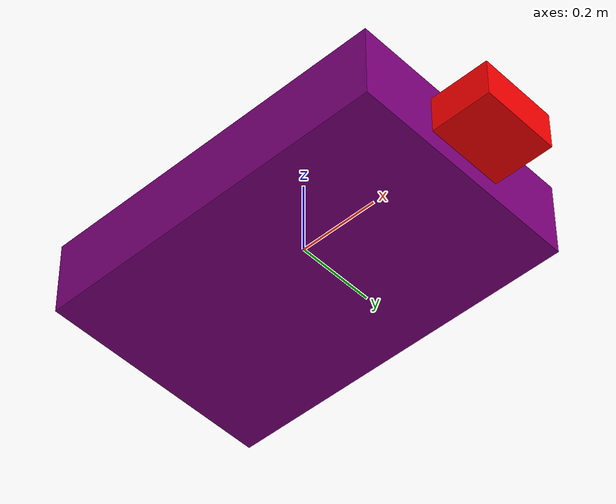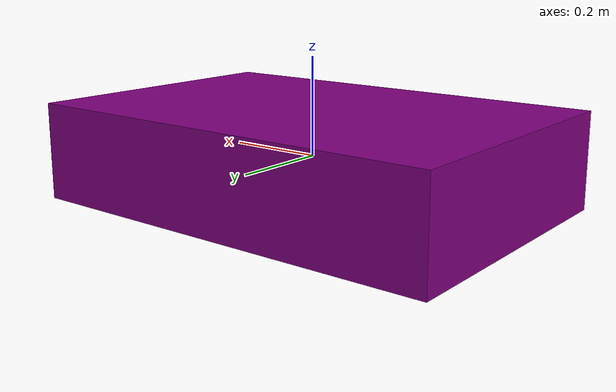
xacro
<?xml version="1.0" encoding="UTF-8"?>
<robot xmlns:xacro="http://www.ros.org/wiki/xacro" name="test_encoder_basic">
  <xacro:include filename="$(find mirte_modular_hardware)/urdf/encoder.ros2_control.xacro"/>
  <xacro:include filename="$(find mirte_modular_hardware)/urdf/motor.ros2_control.xacro"/>

  <link name="base_link">
    <visual>
      <geometry>
        <box size="0.9 0.6 0.2" />
      </geometry>
      <material name="base_link_material">
        <color rgba="0.5 0 0.5 1" />
      </material>
    </visual>
  </link>

  <joint name="test_joint" type="continuous">
    <parent link="base_link" />
    <child link="attachment" />
    <origin xyz="0.45 0 0" />
  </joint>

  <link name="attachment">
    <visual>
      <geometry>
        <box size="0.3 0.2 0.1" />
      </geometry>
      <material name="red">
        <color rgba="1 0 0 1" />
      </material>
    </visual>
  </link>

  <xacro:encoder_sensor hw_device_name="test_encoder" joint_name="test_joint" />
  <xacro:motor_actuator hw_device_name="test_motor" joint_name="test_joint" />

</robot>
